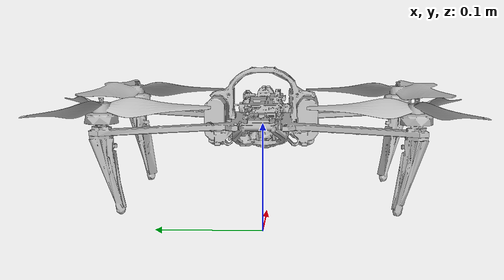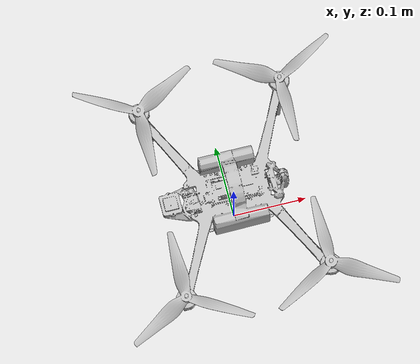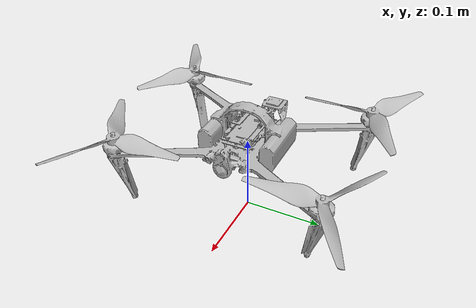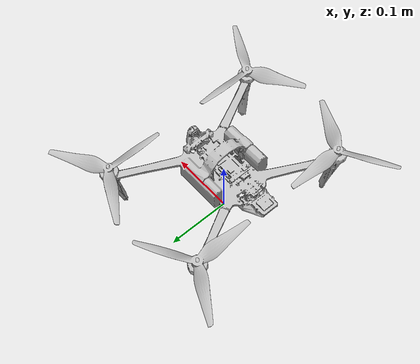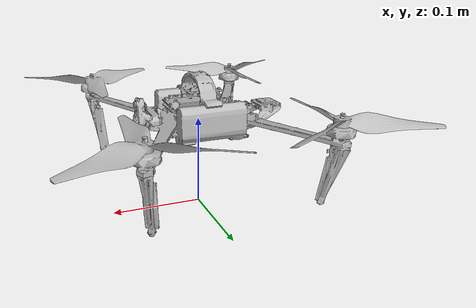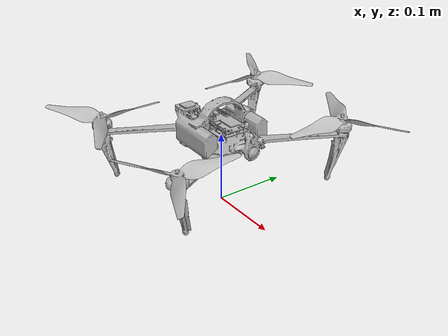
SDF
<?xml version="1.0" encoding="UTF-8"?>
<sdf version='1.10'>
  <model name='starling2max'>
    <pose>0 0 .1 0 0 0</pose>
    <self_collide>false</self_collide>
    <static>false</static>
    <link name='base_link'>
      <inertial>
        <pose>0.0010200000000000001 0.00016000000000000001 0.0074099999999999999 0 0 0</pose>
        <mass>0.46788000000000002</mass>
        <inertia>
          <ixx>0.0029429999999999999</ixx>
          <ixy>0</ixy>
          <ixz>0</ixz>
          <iyy>0.0018569999999999999</iyy>
          <iyz>0</iyz>
          <izz>0.0046490000000000004</izz>
        </inertia>
      </inertial>
      <gravity>true</gravity>
      <velocity_decay/>
      <collision name='base_link_collision'>
        <pose>0 0 0 0 0 0</pose>
        <geometry>
          <mesh>
            <scale>1 1 1</scale>
            <uri>model://starling2max/meshes/body.stl</uri>
          </mesh>
        </geometry>
      </collision>
      <visual name='base_link_visual'>
        <pose>0 0 0 0 0 0</pose>
        <geometry>
          <mesh>
            <scale>1 1 1</scale>
            <uri>model://starling2max/meshes/body.stl</uri>
          </mesh>
        </geometry>
      </visual>
      <sensor name="air_pressure_sensor" type="air_pressure">
        <always_on>1</always_on>
        <update_rate>50</update_rate>
        <air_pressure>
          <pressure>
            <noise type="gaussian">
              <mean>0</mean>
              <stddev>0.01</stddev>
            </noise>
          </pressure>
        </air_pressure>
      </sensor>
      <sensor name="imu_sensor" type="imu">
        <always_on>1</always_on>
        <update_rate>250</update_rate>
      </sensor>
    </link>
    <joint name='joint0' type='revolute'>
      <pose relative_to='base_link'>0.095000000000000001 -0.13 0.0195 0 0 0</pose>
      <parent>base_link</parent>
      <child>vehicle_rotor0</child>
      <axis>
        <xyz>0 0 1</xyz>
        <limit>
          <lower>-inf</lower>
          <upper>inf</upper>
        </limit>
        <dynamics>
          <spring_reference>0</spring_reference>
          <spring_stiffness>0</spring_stiffness>
        </dynamics>
      </axis>
    </joint>
    <link name='vehicle_rotor0'>
      <pose relative_to='joint0'>0 0 0 0 0 0</pose>
      <gravity>true</gravity>
      <self_collide>false</self_collide>
      <velocity_decay/>
      <inertial>
        <pose>0 0 0 0 0 0</pose>
        <mass>0.0070000000000000001</mass>
        <inertia>
          <ixx>1.5999999999999999e-05</ixx>
          <ixy>0</ixy>
          <ixz>0</ixz>
          <iyy>1.5999999999999999e-05</iyy>
          <iyz>0</iyz>
          <izz>3.0000000000000001e-05</izz>
        </inertia>
      </inertial>
      <collision name='vehicle_rotor0_collision'>
        <pose>0 0 0 0 0 0</pose>
        <geometry>
          <mesh>
            <scale>1 1 1</scale>
            <uri>model://starling2max/meshes/rotor0.stl</uri>
          </mesh>
        </geometry>
      </collision>
      <visual name='vehicle_rotor0_visual'>
        <pose>0 0 0 0 0 0</pose>
        <geometry>
          <mesh>
            <scale>1 1 1</scale>
            <uri>model://starling2max/meshes/rotor0.stl</uri>
          </mesh>
        </geometry>
      </visual>
    </link>
    <joint name='joint1' type='revolute'>
      <pose relative_to='base_link'>-0.095000000000000001 0.13 0.0195 0 0 0</pose>
      <parent>base_link</parent>
      <child>vehicle_rotor1</child>
      <axis>
        <xyz>0 0 1</xyz>
        <limit>
          <lower>-inf</lower>
          <upper>inf</upper>
        </limit>
        <dynamics>
          <spring_reference>0</spring_reference>
          <spring_stiffness>0</spring_stiffness>
        </dynamics>
      </axis>
    </joint>
    <link name='vehicle_rotor1'>
      <pose relative_to='joint1'>0 0 0 0 0 0</pose>
      <gravity>true</gravity>
      <self_collide>false</self_collide>
      <velocity_decay/>
      <inertial>
        <pose>0 0 0 0 0 0</pose>
        <mass>0.0070000000000000001</mass>
        <inertia>
          <ixx>1.5999999999999999e-05</ixx>
          <ixy>0</ixy>
          <ixz>0</ixz>
          <iyy>1.5999999999999999e-05</iyy>
          <iyz>0</iyz>
          <izz>3.0000000000000001e-05</izz>
        </inertia>
      </inertial>
      <collision name='vehicle_rotor1_collision'>
        <pose>0 0 0 0 0 0</pose>
        <geometry>
          <mesh>
            <scale>1 1 1</scale>
            <uri>model://starling2max/meshes/rotor1.stl</uri>
          </mesh>
        </geometry>
      </collision>
      <visual name='vehicle_rotor1_visual'>
        <pose>0 0 0 0 0 0</pose>
        <geometry>
          <mesh>
            <scale>1 1 1</scale>
            <uri>model://starling2max/meshes/rotor1.stl</uri>
          </mesh>
        </geometry>
      </visual>
    </link>
    <joint name='joint2' type='revolute'>
      <pose relative_to='base_link'>0.095000000000000001 0.13 0.0195 0 0 0</pose>
      <parent>base_link</parent>
      <child>vehicle_rotor2</child>
      <axis>
        <xyz>0 0 1</xyz>
        <limit>
          <lower>-inf</lower>
          <upper>inf</upper>
        </limit>
        <dynamics>
          <spring_reference>0</spring_reference>
          <spring_stiffness>0</spring_stiffness>
        </dynamics>
      </axis>
    </joint>
    <link name='vehicle_rotor2'>
      <pose relative_to='joint2'>0 0 0 0 0 0</pose>
      <gravity>true</gravity>
      <self_collide>false</self_collide>
      <velocity_decay/>
      <inertial>
        <pose>0 0 0 0 0 0</pose>
        <mass>0.0070000000000000001</mass>
        <inertia>
          <ixx>1.5999999999999999e-05</ixx>
          <ixy>0</ixy>
          <ixz>0</ixz>
          <iyy>1.5999999999999999e-05</iyy>
          <iyz>0</iyz>
          <izz>3.0000000000000001e-05</izz>
        </inertia>
      </inertial>
      <collision name='vehicle_rotor2_collision'>
        <pose>0 0 0 0 0 0</pose>
        <geometry>
          <mesh>
            <scale>1 1 1</scale>
            <uri>model://starling2max/meshes/rotor2.stl</uri>
          </mesh>
        </geometry>
      </collision>
      <visual name='vehicle_rotor2_visual'>
        <pose>0 0 0 0 0 0</pose>
        <geometry>
          <mesh>
            <scale>1 1 1</scale>
            <uri>model://starling2max/meshes/rotor2.stl</uri>
          </mesh>
        </geometry>
      </visual>
    </link>
    <joint name='joint3' type='revolute'>
      <pose relative_to='base_link'>-0.095000000000000001 -0.13 0.0195 0 0 0</pose>
      <parent>base_link</parent>
      <child>vehicle_rotor3</child>
      <axis>
        <xyz>0 0 1</xyz>
        <limit>
          <lower>-inf</lower>
          <upper>inf</upper>
        </limit>
        <dynamics>
          <spring_reference>0</spring_reference>
          <spring_stiffness>0</spring_stiffness>
        </dynamics>
      </axis>
    </joint>
    <link name='vehicle_rotor3'>
      <pose relative_to='joint3'>0 0 0 0 0 0</pose>
      <gravity>true</gravity>
      <self_collide>false</self_collide>
      <velocity_decay/>
      <inertial>
        <pose>0 0 0 0 0 0</pose>
        <mass>0.0070000000000000001</mass>
        <inertia>
          <ixx>1.5999999999999999e-05</ixx>
          <ixy>0</ixy>
          <ixz>0</ixz>
          <iyy>1.5999999999999999e-05</iyy>
          <iyz>0</iyz>
          <izz>3.0000000000000001e-05</izz>
        </inertia>
      </inertial>
      <collision name='vehicle_rotor3_collision'>
        <pose>0 0 0 0 0 0</pose>
        <geometry>
          <mesh>
            <scale>1 1 1</scale>
            <uri>model://starling2max/meshes/rotor3.stl</uri>
          </mesh>
        </geometry>
      </collision>
      <visual name='vehicle_rotor3_visual'>
        <pose>0 0 0 0 0 0</pose>
        <geometry>
          <mesh>
            <scale>1 1 1</scale>
            <uri>model://starling2max/meshes/rotor3.stl</uri>
          </mesh>
        </geometry>
      </visual>
    </link>
    <plugin filename="gz-sim-multicopter-motor-model-system" name="gz::sim::systems::MulticopterMotorModel">
      <jointName>joint0</jointName>
      <linkName>vehicle_rotor0</linkName>
      <turningDirection>ccw</turningDirection>
      <timeConstantUp>0.055</timeConstantUp>
      <timeConstantDown>0.085</timeConstantDown>
      <maxRotVelocity>1257</maxRotVelocity>
      <motorConstant>3.964738e-06</motorConstant>
      <momentConstant>0.01359</momentConstant>
      <commandSubTopic>command/motor_speed</commandSubTopic>
      <motorNumber>0</motorNumber>
      <rotorDragCoefficient>8.06428e-05</rotorDragCoefficient>
      <rollingMomentCoefficient>1e-06</rollingMomentCoefficient>
      <rotorVelocitySlowdownSim>10</rotorVelocitySlowdownSim>
      <motorType>velocity</motorType>
    </plugin>
    <plugin filename="gz-sim-multicopter-motor-model-system" name="gz::sim::systems::MulticopterMotorModel">
      <jointName>joint1</jointName>
      <linkName>vehicle_rotor1</linkName>
      <turningDirection>ccw</turningDirection>
      <timeConstantUp>0.055</timeConstantUp>
      <timeConstantDown>0.085</timeConstantDown>
      <maxRotVelocity>1257</maxRotVelocity>
      <motorConstant>3.964738e-06</motorConstant>
      <momentConstant>0.01359</momentConstant>
      <commandSubTopic>command/motor_speed</commandSubTopic>
      <motorNumber>1</motorNumber>
      <rotorDragCoefficient>8.06428e-05</rotorDragCoefficient>
      <rollingMomentCoefficient>1e-06</rollingMomentCoefficient>
      <rotorVelocitySlowdownSim>10</rotorVelocitySlowdownSim>
      <motorType>velocity</motorType>
    </plugin>
    <plugin filename="gz-sim-multicopter-motor-model-system" name="gz::sim::systems::MulticopterMotorModel">
      <jointName>joint2</jointName>
      <linkName>vehicle_rotor2</linkName>
      <turningDirection>cw</turningDirection>
      <timeConstantUp>0.055</timeConstantUp>
      <timeConstantDown>0.085</timeConstantDown>
      <maxRotVelocity>1257</maxRotVelocity>
      <motorConstant>3.964738e-06</motorConstant>
      <momentConstant>0.01359</momentConstant>
      <commandSubTopic>command/motor_speed</commandSubTopic>
      <motorNumber>2</motorNumber>
      <rotorDragCoefficient>8.06428e-05</rotorDragCoefficient>
      <rollingMomentCoefficient>1e-06</rollingMomentCoefficient>
      <rotorVelocitySlowdownSim>10</rotorVelocitySlowdownSim>
      <motorType>velocity</motorType>
    </plugin>
    <plugin filename="gz-sim-multicopter-motor-model-system" name="gz::sim::systems::MulticopterMotorModel">
      <jointName>joint3</jointName>
      <linkName>vehicle_rotor3</linkName>
      <turningDirection>cw</turningDirection>
      <timeConstantUp>0.055</timeConstantUp>
      <timeConstantDown>0.085</timeConstantDown>
      <maxRotVelocity>1257</maxRotVelocity>
      <motorConstant>3.964738e-06</motorConstant>
      <momentConstant>0.01359</momentConstant>
      <commandSubTopic>command/motor_speed</commandSubTopic>
      <motorNumber>3</motorNumber>
      <rotorDragCoefficient>8.06428e-05</rotorDragCoefficient>
      <rollingMomentCoefficient>1e-06</rollingMomentCoefficient>
      <rotorVelocitySlowdownSim>10</rotorVelocitySlowdownSim>
      <motorType>velocity</motorType>
    </plugin>
  </model>
</sdf>
